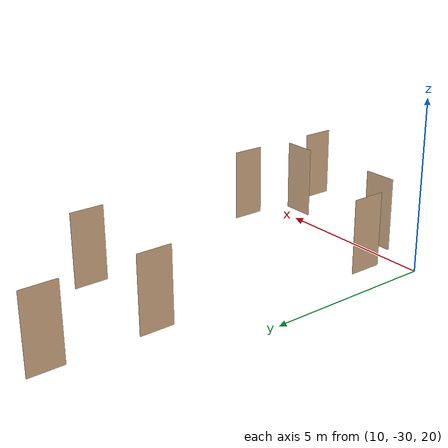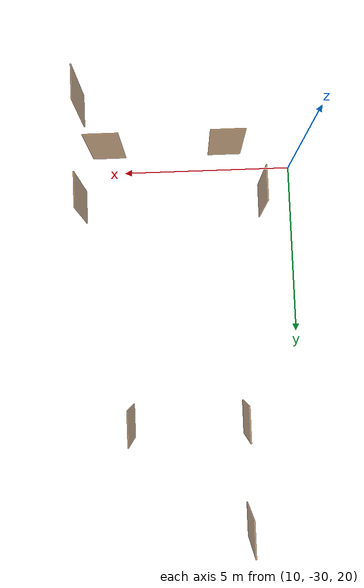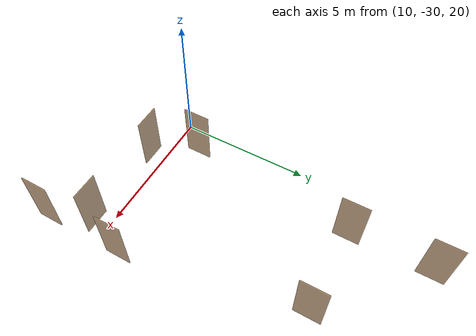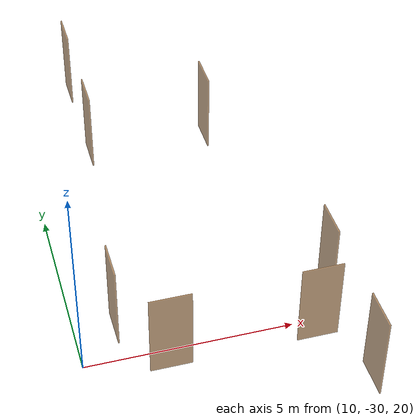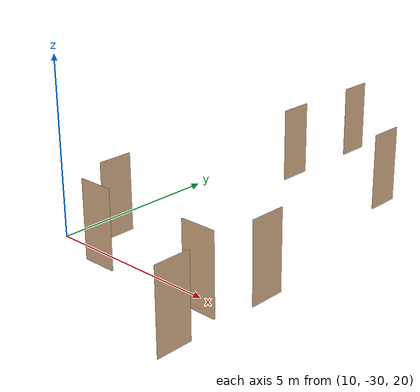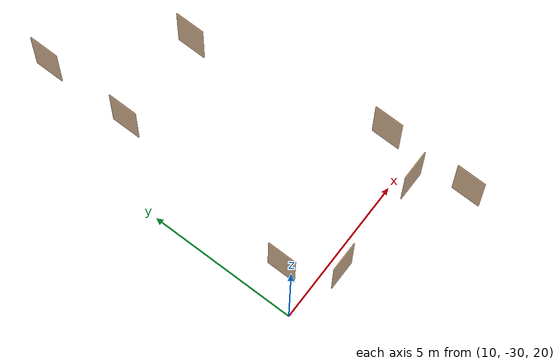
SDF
<sdf version="1.7">
 <world name="sim_world">
  <model name="room5_door">
   <pose>11.7 -19.5 20.0 0 0 -1.5707963267948966</pose>
   <plugin name="door" filename="libdoor.so">
    <v_max_door>0.5</v_max_door>
    <a_max_door>0.3</a_max_door>
    <a_nom_door>0.15</a_nom_door>
    <dx_min_door>0.01</dx_min_door>
    <f_max_door>500.0</f_max_door>
    <door name="room5_door" type="SwingDoor" left_joint_name="empty_joint" right_joint_name="right_joint"/>
   </plugin>
   <link name="right">
    <pose>0 0 1.11 0 0 0</pose>
    <visual name="right_visual">
     <geometry><box><size>0.99 0.03 2.2</size></box></geometry>
     <material>
      <ambient>0.5 0.25 0 0.6</ambient>
      <diffuse>0.5 0.25 0 0.6</diffuse>
      <pbr><metal><metalness>0.0</metalness></metal></pbr>
     </material>
    </visual>
    <collision name="right_collision">
     <geometry><box><size>0.99 0.03 2.2</size></box></geometry>
     <surface><contact><collide_bitmask>0x02</collide_bitmask></contact></surface>
    </collision>
    <inertial>
     <mass>50.0</mass>
     <inertia><ixx>20.17041666666667</ixx><iyy>24.250416666666673</iyy><izz>4.0875</izz></inertia>
    </inertial>
   </link>
   <joint name="right_joint" type="revolute">
    <parent>world</parent>
    <child>right</child>
    <axis><xyz>0 0 1</xyz><limit><lower>0</lower><upper>1.57</upper></limit></axis>
    <pose>0.5 0 0 0 0 0</pose>
   </joint>
  </model>
  <model name="room6_door">
   <pose>11.7 -22.5 20.0 0 0 1.5707963267948966</pose>
   <plugin name="door" filename="libdoor.so">
    <v_max_door>0.5</v_max_door>
    <a_max_door>0.3</a_max_door>
    <a_nom_door>0.15</a_nom_door>
    <dx_min_door>0.01</dx_min_door>
    <f_max_door>500.0</f_max_door>
    <door name="room6_door" type="SwingDoor" left_joint_name="left_joint" right_joint_name="empty_joint"/>
   </plugin>
   <link name="left">
    <pose>0 0 1.11 0 0 0</pose>
    <visual name="left_visual">
     <geometry><box><size>0.99 0.03 2.2</size></box></geometry>
     <material>
      <ambient>0.5 0.25 0 0.6</ambient>
      <diffuse>0.5 0.25 0 0.6</diffuse>
      <pbr><metal><metalness>0.0</metalness></metal></pbr>
     </material>
    </visual>
    <collision name="left_collision">
     <geometry><box><size>0.99 0.03 2.2</size></box></geometry>
     <surface><contact><collide_bitmask>0x02</collide_bitmask></contact></surface>
    </collision>
    <inertial>
     <mass>50.0</mass>
     <inertia><ixx>20.17041666666667</ixx><iyy>24.250416666666673</iyy><izz>4.0875</izz></inertia>
    </inertial>
   </link>
   <joint name="left_joint" type="revolute">
    <parent>world</parent>
    <child>left</child>
    <axis><xyz>0 0 1</xyz><limit><lower>-1.57</lower><upper>0</upper></limit></axis>
    <pose>0.5 0 0 0 0 0</pose>
   </joint>
  </model>
  <model name="room7_door">
   <pose>10.95 -29.0 20.0 0 0 -1.5707963267948966</pose>
   <plugin name="door" filename="libdoor.so">
    <v_max_door>0.5</v_max_door>
    <a_max_door>0.3</a_max_door>
    <a_nom_door>0.15</a_nom_door>
    <dx_min_door>0.01</dx_min_door>
    <f_max_door>500.0</f_max_door>
    <door name="room7_door" type="SwingDoor" left_joint_name="empty_joint" right_joint_name="right_joint"/>
   </plugin>
   <link name="right">
    <pose>0 0 1.11 0 0 0</pose>
    <visual name="right_visual">
     <geometry><box><size>0.99 0.03 2.2</size></box></geometry>
     <material>
      <ambient>0.5 0.25 0 0.6</ambient>
      <diffuse>0.5 0.25 0 0.6</diffuse>
      <pbr><metal><metalness>0.0</metalness></metal></pbr>
     </material>
    </visual>
    <collision name="right_collision">
     <geometry><box><size>0.99 0.03 2.2</size></box></geometry>
     <surface><contact><collide_bitmask>0x02</collide_bitmask></contact></surface>
    </collision>
    <inertial>
     <mass>50.0</mass>
     <inertia><ixx>20.17041666666667</ixx><iyy>24.250416666666673</iyy><izz>4.0875</izz></inertia>
    </inertial>
   </link>
   <joint name="right_joint" type="revolute">
    <parent>world</parent>
    <child>right</child>
    <axis><xyz>0 0 1</xyz><limit><lower>0</lower><upper>1.57</upper></limit></axis>
    <pose>0.5 0 0 0 0 0</pose>
   </joint>
  </model>
  <model name="room9_door">
   <pose>15.45 -30.5 20.0 0 0 0.0</pose>
   <plugin name="door" filename="libdoor.so">
    <v_max_door>0.5</v_max_door>
    <a_max_door>0.3</a_max_door>
    <a_nom_door>0.15</a_nom_door>
    <dx_min_door>0.01</dx_min_door>
    <f_max_door>500.0</f_max_door>
    <door name="room9_door" type="SwingDoor" left_joint_name="empty_joint" right_joint_name="right_joint"/>
   </plugin>
   <link name="right">
    <pose>0 0 1.11 0 0 0</pose>
    <visual name="right_visual">
     <geometry><box><size>0.99 0.03 2.2</size></box></geometry>
     <material>
      <ambient>0.5 0.25 0 0.6</ambient>
      <diffuse>0.5 0.25 0 0.6</diffuse>
      <pbr><metal><metalness>0.0</metalness></metal></pbr>
     </material>
    </visual>
    <collision name="right_collision">
     <geometry><box><size>0.99 0.03 2.2</size></box></geometry>
     <surface><contact><collide_bitmask>0x02</collide_bitmask></contact></surface>
    </collision>
    <inertial>
     <mass>50.0</mass>
     <inertia><ixx>20.17041666666667</ixx><iyy>24.250416666666673</iyy><izz>4.0875</izz></inertia>
    </inertial>
   </link>
   <joint name="right_joint" type="revolute">
    <parent>world</parent>
    <child>right</child>
    <axis><xyz>0 0 1</xyz><limit><lower>0</lower><upper>1.57</upper></limit></axis>
    <pose>0.5 0 0 0 0 0</pose>
   </joint>
  </model>
  <model name="room10_door">
   <pose>16.2 -29.0 20.0 0 0 -1.5707963267948966</pose>
   <plugin name="door" filename="libdoor.so">
    <v_max_door>0.5</v_max_door>
    <a_max_door>0.3</a_max_door>
    <a_nom_door>0.15</a_nom_door>
    <dx_min_door>0.01</dx_min_door>
    <f_max_door>500.0</f_max_door>
    <door name="room10_door" type="SwingDoor" left_joint_name="left_joint" right_joint_name="empty_joint"/>
   </plugin>
   <link name="left">
    <pose>0 0 1.11 0 0 0</pose>
    <visual name="left_visual">
     <geometry><box><size>0.99 0.03 2.2</size></box></geometry>
     <material>
      <ambient>0.5 0.25 0 0.6</ambient>
      <diffuse>0.5 0.25 0 0.6</diffuse>
      <pbr><metal><metalness>0.0</metalness></metal></pbr>
     </material>
    </visual>
    <collision name="left_collision">
     <geometry><box><size>0.99 0.03 2.2</size></box></geometry>
     <surface><contact><collide_bitmask>0x02</collide_bitmask></contact></surface>
    </collision>
    <inertial>
     <mass>50.0</mass>
     <inertia><ixx>20.17041666666667</ixx><iyy>24.250416666666673</iyy><izz>4.0875</izz></inertia>
    </inertial>
   </link>
   <joint name="left_joint" type="revolute">
    <parent>world</parent>
    <child>left</child>
    <axis><xyz>0 0 1</xyz><limit><lower>-1.57</lower><upper>0</upper></limit></axis>
    <pose>0.5 0 0 0 0 0</pose>
   </joint>
  </model>
  <model name="room9_door2">
   <pose>16.2 -32.0 20.0 0 0 -1.5707963267948966</pose>
   <plugin name="door" filename="libdoor.so">
    <v_max_door>0.5</v_max_door>
    <a_max_door>0.3</a_max_door>
    <a_nom_door>0.15</a_nom_door>
    <dx_min_door>0.01</dx_min_door>
    <f_max_door>500.0</f_max_door>
    <door name="room9_door2" type="SwingDoor" left_joint_name="left_joint" right_joint_name="empty_joint"/>
   </plugin>
   <link name="left">
    <pose>0 0 1.11 0 0 0</pose>
    <visual name="left_visual">
     <geometry><box><size>0.99 0.03 2.2</size></box></geometry>
     <material>
      <ambient>0.5 0.25 0 0.6</ambient>
      <diffuse>0.5 0.25 0 0.6</diffuse>
      <pbr><metal><metalness>0.0</metalness></metal></pbr>
     </material>
    </visual>
    <collision name="left_collision">
     <geometry><box><size>0.99 0.03 2.2</size></box></geometry>
     <surface><contact><collide_bitmask>0x02</collide_bitmask></contact></surface>
    </collision>
    <inertial>
     <mass>50.0</mass>
     <inertia><ixx>20.17041666666667</ixx><iyy>24.250416666666673</iyy><izz>4.0875</izz></inertia>
    </inertial>
   </link>
   <joint name="left_joint" type="revolute">
    <parent>world</parent>
    <child>left</child>
    <axis><xyz>0 0 1</xyz><limit><lower>-1.57</lower><upper>0</upper></limit></axis>
    <pose>0.5 0 0 0 0 0</pose>
   </joint>
  </model>
  <model name="room11_door">
   <pose>14.95 -22.5 20.0 0 0 1.5707963267948966</pose>
   <plugin name="door" filename="libdoor.so">
    <v_max_door>0.5</v_max_door>
    <a_max_door>0.3</a_max_door>
    <a_nom_door>0.15</a_nom_door>
    <dx_min_door>0.01</dx_min_door>
    <f_max_door>500.0</f_max_door>
    <door name="room11_door" type="SwingDoor" left_joint_name="empty_joint" right_joint_name="right_joint"/>
   </plugin>
   <link name="right">
    <pose>0 0 1.11 0 0 0</pose>
    <visual name="right_visual">
     <geometry><box><size>0.99 0.03 2.2</size></box></geometry>
     <material>
      <ambient>0.5 0.25 0 0.6</ambient>
      <diffuse>0.5 0.25 0 0.6</diffuse>
      <pbr><metal><metalness>0.0</metalness></metal></pbr>
     </material>
    </visual>
    <collision name="right_collision">
     <geometry><box><size>0.99 0.03 2.2</size></box></geometry>
     <surface><contact><collide_bitmask>0x02</collide_bitmask></contact></surface>
    </collision>
    <inertial>
     <mass>50.0</mass>
     <inertia><ixx>20.17041666666667</ixx><iyy>24.250416666666673</iyy><izz>4.0875</izz></inertia>
    </inertial>
   </link>
   <joint name="right_joint" type="revolute">
    <parent>world</parent>
    <child>right</child>
    <axis><xyz>0 0 1</xyz><limit><lower>0</lower><upper>1.57</upper></limit></axis>
    <pose>0.5 0 0 0 0 0</pose>
   </joint>
  </model>
  <model name="room8_door">
   <pose>11.95 -30.5 20.0 0 0 0.0</pose>
   <plugin name="door" filename="libdoor.so">
    <v_max_door>0.5</v_max_door>
    <a_max_door>0.3</a_max_door>
    <a_nom_door>0.15</a_nom_door>
    <dx_min_door>0.01</dx_min_door>
    <f_max_door>500.0</f_max_door>
    <door name="room8_door" type="SwingDoor" left_joint_name="empty_joint" right_joint_name="right_joint"/>
   </plugin>
   <link name="right">
    <pose>0 0 1.11 0 0 0</pose>
    <visual name="right_visual">
     <geometry><box><size>0.99 0.03 2.2</size></box></geometry>
     <material>
      <ambient>0.5 0.25 0 0.6</ambient>
      <diffuse>0.5 0.25 0 0.6</diffuse>
      <pbr><metal><metalness>0.0</metalness></metal></pbr>
     </material>
    </visual>
    <collision name="right_collision">
     <geometry><box><size>0.99 0.03 2.2</size></box></geometry>
     <surface><contact><collide_bitmask>0x02</collide_bitmask></contact></surface>
    </collision>
    <inertial>
     <mass>50.0</mass>
     <inertia><ixx>20.17041666666667</ixx><iyy>24.250416666666673</iyy><izz>4.0875</izz></inertia>
    </inertial>
   </link>
   <joint name="right_joint" type="revolute">
    <parent>world</parent>
    <child>right</child>
    <axis><xyz>0 0 1</xyz><limit><lower>0</lower><upper>1.57</upper></limit></axis>
    <pose>0.5 0 0 0 0 0</pose>
   </joint>
  </model>
 </world>
</sdf>
